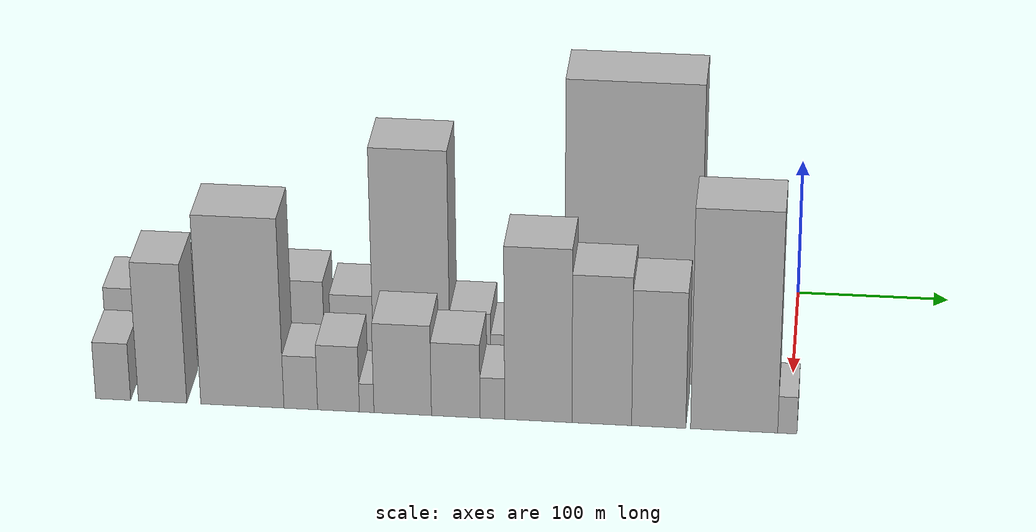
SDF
<sdf version="1.6">
 <world name="default">
  <model name="building_1">
   <static>1</static>
   <pose>100.0000 -428.7235 0 0.000000 0.000000 0.000000</pose>
   <link name="link">
    <pose>0 0 25.50 0 0 0</pose>
    <collision name="collision"><geometry><box><size>40.0000 30.5529 51.0000</size></box></geometry></collision>
    <visual name="visual">
     <cast_shadows>0</cast_shadows>
     <geometry><box><size>40.0000 30.5529 51.0000</size></box></geometry>
     <material>
      <script>
       <uri>model://HANNAS_wall/materials/scripts</uri>
       <uri>model://HANNAS_wall/materials/textures</uri>
       <name>vrc/HANNAS_wall</name>
      </script>
     </material>
    </visual>
   </link>
  </model>
  <model name="building_2">
   <static>1</static>
   <pose>100.0000 -399.7224 0 0.000000 0.000000 0.000000</pose>
   <link name="link">
    <pose>0 0 18.00 0 0 0</pose>
    <collision name="collision"><geometry><box><size>40.0000 21.4493 36.0000</size></box></geometry></collision>
    <visual name="visual">
     <cast_shadows>0</cast_shadows>
     <geometry><box><size>40.0000 21.4493 36.0000</size></box></geometry>
     <material>
      <script>
       <uri>model://HANNAS_wall/materials/scripts</uri>
       <uri>model://HANNAS_wall/materials/textures</uri>
       <name>vrc/HANNAS_wall</name>
      </script>
     </material>
    </visual>
   </link>
  </model>
  <model name="building_3">
   <static>1</static>
   <pose>100.0000 -369.9463 0 0.000000 0.000000 0.000000</pose>
   <link name="link">
    <pose>0 0 37.50 0 0 0</pose>
    <collision name="collision"><geometry><box><size>40.0000 38.1030 75.0000</size></box></geometry></collision>
    <visual name="visual">
     <cast_shadows>0</cast_shadows>
     <geometry><box><size>40.0000 38.1030 75.0000</size></box></geometry>
     <material>
      <script>
       <uri>model://HANNAS_wall/materials/scripts</uri>
       <uri>model://HANNAS_wall/materials/textures</uri>
       <name>vrc/HANNAS_wall</name>
      </script>
     </material>
    </visual>
   </link>
  </model>
  <model name="building_4">
   <static>1</static>
   <pose>100.0000 -346.6126 0 0.000000 0.000000 0.000000</pose>
   <link name="link">
    <pose>0 0 10.50 0 0 0</pose>
    <collision name="collision"><geometry><box><size>40.0000 8.5644 21.0000</size></box></geometry></collision>
    <visual name="visual">
     <cast_shadows>0</cast_shadows>
     <geometry><box><size>40.0000 8.5644 21.0000</size></box></geometry>
     <material>
      <script>
       <uri>model://HANNAS_wall/materials/scripts</uri>
       <uri>model://HANNAS_wall/materials/textures</uri>
       <name>vrc/HANNAS_wall</name>
      </script>
     </material>
    </visual>
   </link>
  </model>
  <model name="building_5">
   <static>1</static>
   <pose>100.0000 -319.2629 0 0.000000 0.000000 0.000000</pose>
   <link name="link">
    <pose>0 0 31.50 0 0 0</pose>
    <collision name="collision"><geometry><box><size>40.0000 36.1349 63.0000</size></box></geometry></collision>
    <visual name="visual">
     <cast_shadows>0</cast_shadows>
     <geometry><box><size>40.0000 36.1349 63.0000</size></box></geometry>
     <material>
      <script>
       <uri>model://HANNAS_wall/materials/scripts</uri>
       <uri>model://HANNAS_wall/materials/textures</uri>
       <name>vrc/HANNAS_wall</name>
      </script>
     </material>
    </visual>
   </link>
  </model>
  <model name="building_6">
   <static>1</static>
   <pose>100.0000 -283.4345 0 0.000000 0.000000 0.000000</pose>
   <link name="link">
    <pose>0 0 27.00 0 0 0</pose>
    <collision name="collision"><geometry><box><size>40.0000 27.5219 54.0000</size></box></geometry></collision>
    <visual name="visual">
     <cast_shadows>0</cast_shadows>
     <geometry><box><size>40.0000 27.5219 54.0000</size></box></geometry>
     <material>
      <script>
       <uri>model://HANNAS_wall/materials/scripts</uri>
       <uri>model://HANNAS_wall/materials/textures</uri>
       <name>vrc/HANNAS_wall</name>
      </script>
     </material>
    </visual>
   </link>
  </model>
  <model name="building_7">
   <static>1</static>
   <pose>100.0000 -244.8544 0 0.000000 0.000000 0.000000</pose>
   <link name="link">
    <pose>0 0 81.00 0 0 0</pose>
    <collision name="collision"><geometry><box><size>40.0000 49.6384 162.0000</size></box></geometry></collision>
    <visual name="visual">
     <cast_shadows>0</cast_shadows>
     <geometry><box><size>40.0000 49.6384 162.0000</size></box></geometry>
     <material>
      <script>
       <uri>model://HANNAS_wall/materials/scripts</uri>
       <uri>model://HANNAS_wall/materials/textures</uri>
       <name>vrc/HANNAS_wall</name>
      </script>
     </material>
    </visual>
   </link>
  </model>
  <model name="building_8">
   <static>1</static>
   <pose>100.0000 -206.8260 0 0.000000 0.000000 0.000000</pose>
   <link name="link">
    <pose>0 0 22.50 0 0 0</pose>
    <collision name="collision"><geometry><box><size>40.0000 26.4183 45.0000</size></box></geometry></collision>
    <visual name="visual">
     <cast_shadows>0</cast_shadows>
     <geometry><box><size>40.0000 26.4183 45.0000</size></box></geometry>
     <material>
      <script>
       <uri>model://HANNAS_wall/materials/scripts</uri>
       <uri>model://HANNAS_wall/materials/textures</uri>
       <name>vrc/HANNAS_wall</name>
      </script>
     </material>
    </visual>
   </link>
  </model>
  <model name="building_9">
   <static>1</static>
   <pose>100.0000 -185.9107 0 0.000000 0.000000 0.000000</pose>
   <link name="link">
    <pose>0 0 15.00 0 0 0</pose>
    <collision name="collision"><geometry><box><size>40.0000 15.4123 30.0000</size></box></geometry></collision>
    <visual name="visual">
     <cast_shadows>0</cast_shadows>
     <geometry><box><size>40.0000 15.4123 30.0000</size></box></geometry>
     <material>
      <script>
       <uri>model://HANNAS_wall/materials/scripts</uri>
       <uri>model://HANNAS_wall/materials/textures</uri>
       <name>vrc/HANNAS_wall</name>
      </script>
     </material>
    </visual>
   </link>
  </model>
  <model name="building_10">
   <static>1</static>
   <pose>100.0000 -162.0155 0 0.000000 0.000000 0.000000</pose>
   <link name="link">
    <pose>0 0 31.50 0 0 0</pose>
    <collision name="collision"><geometry><box><size>40.0000 32.3781 63.0000</size></box></geometry></collision>
    <visual name="visual">
     <cast_shadows>0</cast_shadows>
     <geometry><box><size>40.0000 32.3781 63.0000</size></box></geometry>
     <material>
      <script>
       <uri>model://HANNAS_wall/materials/scripts</uri>
       <uri>model://HANNAS_wall/materials/textures</uri>
       <name>vrc/HANNAS_wall</name>
      </script>
     </material>
    </visual>
   </link>
  </model>
  <model name="building_11">
   <static>1</static>
   <pose>100.0000 -102.7328 0 0.000000 0.000000 0.000000</pose>
   <link name="link">
    <pose>0 0 108.00 0 0 0</pose>
    <collision name="collision"><geometry><box><size>40.0000 86.1872 216.0000</size></box></geometry></collision>
    <visual name="visual">
     <cast_shadows>0</cast_shadows>
     <geometry><box><size>40.0000 86.1872 216.0000</size></box></geometry>
     <material>
      <script>
       <uri>model://HANNAS_wall/materials/scripts</uri>
       <uri>model://HANNAS_wall/materials/textures</uri>
       <name>vrc/HANNAS_wall</name>
      </script>
     </material>
    </visual>
   </link>
  </model>
  <model name="building_12">
   <static>1</static>
   <pose>100.0000 -44.0869 0 0.000000 0.000000 0.000000</pose>
   <link name="link">
    <pose>0 0 51.00 0 0 0</pose>
    <collision name="collision"><geometry><box><size>40.0000 31.1046 102.0000</size></box></geometry></collision>
    <visual name="visual">
     <cast_shadows>0</cast_shadows>
     <geometry><box><size>40.0000 31.1046 102.0000</size></box></geometry>
     <material>
      <script>
       <uri>model://HANNAS_wall/materials/scripts</uri>
       <uri>model://HANNAS_wall/materials/textures</uri>
       <name>vrc/HANNAS_wall</name>
      </script>
     </material>
    </visual>
   </link>
  </model>
  <model name="building_13">
   <static>1</static>
   <pose>100.0000 -19.5839 0 0.000000 0.000000 0.000000</pose>
   <link name="link">
    <pose>0 0 15.00 0 0 0</pose>
    <collision name="collision"><geometry><box><size>40.0000 17.9015 30.0000</size></box></geometry></collision>
    <visual name="visual">
     <cast_shadows>0</cast_shadows>
     <geometry><box><size>40.0000 17.9015 30.0000</size></box></geometry>
     <material>
      <script>
       <uri>model://HANNAS_wall/materials/scripts</uri>
       <uri>model://HANNAS_wall/materials/textures</uri>
       <name>vrc/HANNAS_wall</name>
      </script>
     </material>
    </visual>
   </link>
  </model>
  <model name="building_28">
   <static>1</static>
   <pose>152.0000 -429.7385 0 0.000000 0.000000 0.000000</pose>
   <link name="link">
    <pose>0 0 21.00 0 0 0</pose>
    <collision name="collision"><geometry><box><size>40.0000 22.5230 42.0000</size></box></geometry></collision>
    <visual name="visual">
     <cast_shadows>0</cast_shadows>
     <geometry><box><size>40.0000 22.5230 42.0000</size></box></geometry>
     <material>
      <script>
       <uri>model://HANNAS_wall/materials/scripts</uri>
       <uri>model://HANNAS_wall/materials/textures</uri>
       <name>vrc/HANNAS_wall</name>
      </script>
     </material>
    </visual>
   </link>
  </model>
  <model name="building_29">
   <static>1</static>
   <pose>152.0000 -397.9014 0 0.000000 0.000000 0.000000</pose>
   <link name="link">
    <pose>0 0 51.00 0 0 0</pose>
    <collision name="collision"><geometry><box><size>40.0000 31.1514 102.0000</size></box></geometry></collision>
    <visual name="visual">
     <cast_shadows>0</cast_shadows>
     <geometry><box><size>40.0000 31.1514 102.0000</size></box></geometry>
     <material>
      <script>
       <uri>model://HANNAS_wall/materials/scripts</uri>
       <uri>model://HANNAS_wall/materials/textures</uri>
       <name>vrc/HANNAS_wall</name>
      </script>
     </material>
    </visual>
   </link>
  </model>
  <model name="building_30">
   <static>1</static>
   <pose>152.0000 -346.6475 0 0.000000 0.000000 0.000000</pose>
   <link name="link">
    <pose>0 0 69.00 0 0 0</pose>
    <collision name="collision"><geometry><box><size>40.0000 53.3563 138.0000</size></box></geometry></collision>
    <visual name="visual">
     <cast_shadows>0</cast_shadows>
     <geometry><box><size>40.0000 53.3563 138.0000</size></box></geometry>
     <material>
      <script>
       <uri>model://HANNAS_wall/materials/scripts</uri>
       <uri>model://HANNAS_wall/materials/textures</uri>
       <name>vrc/HANNAS_wall</name>
      </script>
     </material>
    </visual>
   </link>
  </model>
  <model name="building_31">
   <static>1</static>
   <pose>152.0000 -309.2004 0 0.000000 0.000000 0.000000</pose>
   <link name="link">
    <pose>0 0 19.50 0 0 0</pose>
    <collision name="collision"><geometry><box><size>40.0000 21.5380 39.0000</size></box></geometry></collision>
    <visual name="visual">
     <cast_shadows>0</cast_shadows>
     <geometry><box><size>40.0000 21.5380 39.0000</size></box></geometry>
     <material>
      <script>
       <uri>model://HANNAS_wall/materials/scripts</uri>
       <uri>model://HANNAS_wall/materials/textures</uri>
       <name>vrc/HANNAS_wall</name>
      </script>
     </material>
    </visual>
   </link>
  </model>
  <model name="building_32">
   <static>1</static>
   <pose>152.0000 -285.0999 0 0.000000 0.000000 0.000000</pose>
   <link name="link">
    <pose>0 0 24.00 0 0 0</pose>
    <collision name="collision"><geometry><box><size>40.0000 26.6628 48.0000</size></box></geometry></collision>
    <visual name="visual">
     <cast_shadows>0</cast_shadows>
     <geometry><box><size>40.0000 26.6628 48.0000</size></box></geometry>
     <material>
      <script>
       <uri>model://HANNAS_wall/materials/scripts</uri>
       <uri>model://HANNAS_wall/materials/textures</uri>
       <name>vrc/HANNAS_wall</name>
      </script>
     </material>
    </visual>
   </link>
  </model>
  <model name="building_33">
   <static>1</static>
   <pose>152.0000 -267.1268 0 0.000000 0.000000 0.000000</pose>
   <link name="link">
    <pose>0 0 10.50 0 0 0</pose>
    <collision name="collision"><geometry><box><size>40.0000 9.2833 21.0000</size></box></geometry></collision>
    <visual name="visual">
     <cast_shadows>0</cast_shadows>
     <geometry><box><size>40.0000 9.2833 21.0000</size></box></geometry>
     <material>
      <script>
       <uri>model://HANNAS_wall/materials/scripts</uri>
       <uri>model://HANNAS_wall/materials/textures</uri>
       <name>vrc/HANNAS_wall</name>
      </script>
     </material>
    </visual>
   </link>
  </model>
  <model name="building_34">
   <static>1</static>
   <pose>152.0000 -244.1699 0 0.000000 0.000000 0.000000</pose>
   <link name="link">
    <pose>0 0 33.00 0 0 0</pose>
    <collision name="collision"><geometry><box><size>40.0000 36.6305 66.0000</size></box></geometry></collision>
    <visual name="visual">
     <cast_shadows>0</cast_shadows>
     <geometry><box><size>40.0000 36.6305 66.0000</size></box></geometry>
     <material>
      <script>
       <uri>model://HANNAS_wall/materials/scripts</uri>
       <uri>model://HANNAS_wall/materials/textures</uri>
       <name>vrc/HANNAS_wall</name>
      </script>
     </material>
    </visual>
   </link>
  </model>
  <model name="building_35">
   <static>1</static>
   <pose>152.0000 -210.4087 0 0.000000 0.000000 0.000000</pose>
   <link name="link">
    <pose>0 0 27.00 0 0 0</pose>
    <collision name="collision"><geometry><box><size>40.0000 30.8920 54.0000</size></box></geometry></collision>
    <visual name="visual">
     <cast_shadows>0</cast_shadows>
     <geometry><box><size>40.0000 30.8920 54.0000</size></box></geometry>
     <material>
      <script>
       <uri>model://HANNAS_wall/materials/scripts</uri>
       <uri>model://HANNAS_wall/materials/textures</uri>
       <name>vrc/HANNAS_wall</name>
      </script>
     </material>
    </visual>
   </link>
  </model>
  <model name="building_36">
   <static>1</static>
   <pose>152.0000 -187.1488 0 0.000000 0.000000 0.000000</pose>
   <link name="link">
    <pose>0 0 15.00 0 0 0</pose>
    <collision name="collision"><geometry><box><size>40.0000 15.6278 30.0000</size></box></geometry></collision>
    <visual name="visual">
     <cast_shadows>0</cast_shadows>
     <geometry><box><size>40.0000 15.6278 30.0000</size></box></geometry>
     <material>
      <script>
       <uri>model://HANNAS_wall/materials/scripts</uri>
       <uri>model://HANNAS_wall/materials/textures</uri>
       <name>vrc/HANNAS_wall</name>
      </script>
     </material>
    </visual>
   </link>
  </model>
  <model name="building_37">
   <static>1</static>
   <pose>152.0000 -158.0648 0 0.000000 0.000000 0.000000</pose>
   <link name="link">
    <pose>0 0 63.00 0 0 0</pose>
    <collision name="collision"><geometry><box><size>40.0000 42.5401 126.0000</size></box></geometry></collision>
    <visual name="visual">
     <cast_shadows>0</cast_shadows>
     <geometry><box><size>40.0000 42.5401 126.0000</size></box></geometry>
     <material>
      <script>
       <uri>model://HANNAS_wall/materials/scripts</uri>
       <uri>model://HANNAS_wall/materials/textures</uri>
       <name>vrc/HANNAS_wall</name>
      </script>
     </material>
    </visual>
   </link>
  </model>
  <model name="building_38">
   <static>1</static>
   <pose>152.0000 -117.9856 0 0.000000 0.000000 0.000000</pose>
   <link name="link">
    <pose>0 0 54.00 0 0 0</pose>
    <collision name="collision"><geometry><box><size>40.0000 37.6183 108.0000</size></box></geometry></collision>
    <visual name="visual">
     <cast_shadows>0</cast_shadows>
     <geometry><box><size>40.0000 37.6183 108.0000</size></box></geometry>
     <material>
      <script>
       <uri>model://HANNAS_wall/materials/scripts</uri>
       <uri>model://HANNAS_wall/materials/textures</uri>
       <name>vrc/HANNAS_wall</name>
      </script>
     </material>
    </visual>
   </link>
  </model>
  <model name="building_39">
   <static>1</static>
   <pose>152.0000 -82.1366 0 0.000000 0.000000 0.000000</pose>
   <link name="link">
    <pose>0 0 49.50 0 0 0</pose>
    <collision name="collision"><geometry><box><size>40.0000 34.0799 99.0000</size></box></geometry></collision>
    <visual name="visual">
     <cast_shadows>0</cast_shadows>
     <geometry><box><size>40.0000 34.0799 99.0000</size></box></geometry>
     <material>
      <script>
       <uri>model://HANNAS_wall/materials/scripts</uri>
       <uri>model://HANNAS_wall/materials/textures</uri>
       <name>vrc/HANNAS_wall</name>
      </script>
     </material>
    </visual>
   </link>
  </model>
  <model name="building_40">
   <static>1</static>
   <pose>152.0000 -34.7592 0 0.000000 0.000000 0.000000</pose>
   <link name="link">
    <pose>0 0 79.50 0 0 0</pose>
    <collision name="collision"><geometry><box><size>40.0000 54.6748 159.0000</size></box></geometry></collision>
    <visual name="visual">
     <cast_shadows>0</cast_shadows>
     <geometry><box><size>40.0000 54.6748 159.0000</size></box></geometry>
     <material>
      <script>
       <uri>model://HANNAS_wall/materials/scripts</uri>
       <uri>model://HANNAS_wall/materials/textures</uri>
       <name>vrc/HANNAS_wall</name>
      </script>
     </material>
    </visual>
   </link>
  </model>
  <model name="building_41">
   <static>1</static>
   <pose>152.0000 -1.3934 0 0.000000 0.000000 0.000000</pose>
   <link name="link">
    <pose>0 0 13.50 0 0 0</pose>
    <collision name="collision"><geometry><box><size>40.0000 12.0569 27.0000</size></box></geometry></collision>
    <visual name="visual">
     <cast_shadows>0</cast_shadows>
     <geometry><box><size>40.0000 12.0569 27.0000</size></box></geometry>
     <material>
      <script>
       <uri>model://HANNAS_wall/materials/scripts</uri>
       <uri>model://HANNAS_wall/materials/textures</uri>
       <name>vrc/HANNAS_wall</name>
      </script>
     </material>
    </visual>
   </link>
  </model>
 </world>
</sdf>
